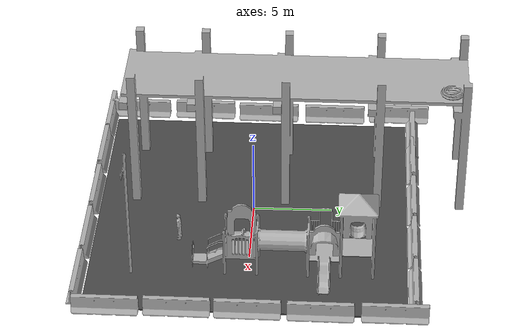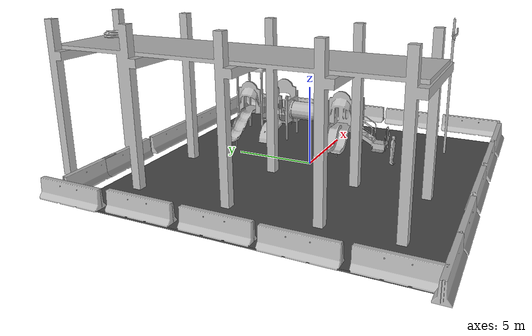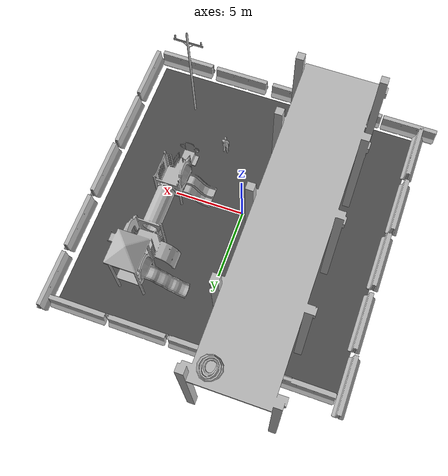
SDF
<sdf version="1.6">
 <world name="default">
  <light name="sun" type="directional">
   <pose>0 0 10 0 -0 0</pose>
   <diffuse>0.8 0.8 0.8 1</diffuse>
   <specular>0.2 0.2 0.2 1</specular>
   <attenuation>
    <range>1000</range>
    <constant>0.9</constant>
    <linear>0.01</linear>
    <quadratic>0.001</quadratic>
   </attenuation>
   <direction>-0.5 0.1 -0.9</direction>
  </light>
  <gravity>0 0 -9.8</gravity>
  <magnetic_field>6e-06 2.3e-05 -4.2e-05</magnetic_field>
  <atmosphere type="adiabatic"/>
  <physics name="default_physics" default="0" type="ode">
   <max_step_size>0.001</max_step_size>
   <real_time_factor>1</real_time_factor>
   <real_time_update_rate>1000</real_time_update_rate>
  </physics>
  <scene><ambient>0.4 0.4 0.4 1</ambient><background>0.7 0.7 0.7 1</background><shadows>1</shadows></scene>
  <audio><device>default</device></audio>
  <spherical_coordinates>
   <surface_model>EARTH_WGS84</surface_model>
   <latitude_deg>0</latitude_deg>
   <longitude_deg>0</longitude_deg>
   <elevation>0</elevation>
   <heading_deg>0</heading_deg>
  </spherical_coordinates>
  <model name="asphalt_plane">
   <static>1</static>
   <link name="link">
    <collision name="collision"><geometry><box><size>20 20 0.1</size></box></geometry></collision>
    <visual name="visual">
     <cast_shadows>0</cast_shadows>
     <geometry><box><size>20 20 0.1</size></box></geometry>
     <material>
      <script>
       <uri>model://asphalt_plane/materials/scripts</uri>
       <uri>model://asphalt_plane/materials/textures</uri>
       <name>vrc/asphalt</name>
      </script>
     </material>
    </visual>
   </link>
   <pose>-0.122487 -0.052165 -0.404777 0 -0 0</pose>
  </model>
  <model name="jersey_barrier">
   <static>1</static>
   <link name="link">
    <visual name="visual">
     <geometry><mesh><uri>model://jersey_barrier/meshes/jersey_barrier.dae</uri></mesh></geometry>
    </visual>
    <collision name="upright">
     <pose>0 0 0.5715 0 -0 0</pose>
     <geometry><box><size>4.06542 0.3063 1.143</size></box></geometry>
    </collision>
    <collision name="base">
     <pose>0 0 0.032258 0 -0 0</pose>
     <geometry><box><size>4.06542 0.8107 0.064516</size></box></geometry>
    </collision>
    <collision name="base2">
     <pose>0 0 0.1 0 -0 0</pose>
     <geometry><box><size>4.06542 0.65 0.1</size></box></geometry>
    </collision>
    <collision name="base3">
     <pose>0 0 0.2 0 -0 0</pose>
     <geometry><box><size>4.06542 0.5 0.1</size></box></geometry>
    </collision>
    <collision name="left-angle">
     <pose>0 -0.224 0.2401 0.9 -0 0</pose>
     <geometry><box><size>4.06542 0.5 0.064516</size></box></geometry>
    </collision>
    <collision name="right-angle">
     <pose>0 0.224 0.2401 -0.9 0 0</pose>
     <geometry><box><size>4.06542 0.5 0.064516</size></box></geometry>
    </collision>
   </link>
   <pose>8.00558 10.3853 0 0 -0 0</pose>
  </model>
  <model name="jersey_barrier_clone">
   <static>1</static>
   <link name="link">
    <visual name="visual">
     <geometry><mesh><uri>model://jersey_barrier/meshes/jersey_barrier.dae</uri></mesh></geometry>
    </visual>
    <collision name="upright">
     <pose>0 0 0.5715 0 -0 0</pose>
     <geometry><box><size>4.06542 0.3063 1.143</size></box></geometry>
    </collision>
    <collision name="base">
     <pose>0 0 0.032258 0 -0 0</pose>
     <geometry><box><size>4.06542 0.8107 0.064516</size></box></geometry>
    </collision>
    <collision name="base2">
     <pose>0 0 0.1 0 -0 0</pose>
     <geometry><box><size>4.06542 0.65 0.1</size></box></geometry>
    </collision>
    <collision name="base3">
     <pose>0 0 0.2 0 -0 0</pose>
     <geometry><box><size>4.06542 0.5 0.1</size></box></geometry>
    </collision>
    <collision name="left-angle">
     <pose>0 -0.224 0.2401 0.9 -0 0</pose>
     <geometry><box><size>4.06542 0.5 0.064516</size></box></geometry>
    </collision>
    <collision name="right-angle">
     <pose>0 0.224 0.2401 -0.9 0 0</pose>
     <geometry><box><size>4.06542 0.5 0.064516</size></box></geometry>
    </collision>
   </link>
   <pose>3.7224 10.3599 0 0 -0 0</pose>
  </model>
  <model name="jersey_barrier_clone_0">
   <static>1</static>
   <link name="link">
    <visual name="visual">
     <geometry><mesh><uri>model://jersey_barrier/meshes/jersey_barrier.dae</uri></mesh></geometry>
    </visual>
    <collision name="upright">
     <pose>0 0 0.5715 0 -0 0</pose>
     <geometry><box><size>4.06542 0.3063 1.143</size></box></geometry>
    </collision>
    <collision name="base">
     <pose>0 0 0.032258 0 -0 0</pose>
     <geometry><box><size>4.06542 0.8107 0.064516</size></box></geometry>
    </collision>
    <collision name="base2">
     <pose>0 0 0.1 0 -0 0</pose>
     <geometry><box><size>4.06542 0.65 0.1</size></box></geometry>
    </collision>
    <collision name="base3">
     <pose>0 0 0.2 0 -0 0</pose>
     <geometry><box><size>4.06542 0.5 0.1</size></box></geometry>
    </collision>
    <collision name="left-angle">
     <pose>0 -0.224 0.2401 0.9 -0 0</pose>
     <geometry><box><size>4.06542 0.5 0.064516</size></box></geometry>
    </collision>
    <collision name="right-angle">
     <pose>0 0.224 0.2401 -0.9 0 0</pose>
     <geometry><box><size>4.06542 0.5 0.064516</size></box></geometry>
    </collision>
   </link>
   <pose>-0.574842 10.3549 0 0 -0 0</pose>
  </model>
  <model name="jersey_barrier_clone_1">
   <static>1</static>
   <link name="link">
    <visual name="visual">
     <geometry><mesh><uri>model://jersey_barrier/meshes/jersey_barrier.dae</uri></mesh></geometry>
    </visual>
    <collision name="upright">
     <pose>0 0 0.5715 0 -0 0</pose>
     <geometry><box><size>4.06542 0.3063 1.143</size></box></geometry>
    </collision>
    <collision name="base">
     <pose>0 0 0.032258 0 -0 0</pose>
     <geometry><box><size>4.06542 0.8107 0.064516</size></box></geometry>
    </collision>
    <collision name="base2">
     <pose>0 0 0.1 0 -0 0</pose>
     <geometry><box><size>4.06542 0.65 0.1</size></box></geometry>
    </collision>
    <collision name="base3">
     <pose>0 0 0.2 0 -0 0</pose>
     <geometry><box><size>4.06542 0.5 0.1</size></box></geometry>
    </collision>
    <collision name="left-angle">
     <pose>0 -0.224 0.2401 0.9 -0 0</pose>
     <geometry><box><size>4.06542 0.5 0.064516</size></box></geometry>
    </collision>
    <collision name="right-angle">
     <pose>0 0.224 0.2401 -0.9 0 0</pose>
     <geometry><box><size>4.06542 0.5 0.064516</size></box></geometry>
    </collision>
   </link>
   <pose>-4.95286 10.3497 0 0 -0 0</pose>
  </model>
  <model name="jersey_barrier_clone_2">
   <static>1</static>
   <link name="link">
    <visual name="visual">
     <geometry><mesh><uri>model://jersey_barrier/meshes/jersey_barrier.dae</uri></mesh></geometry>
    </visual>
    <collision name="upright">
     <pose>0 0 0.5715 0 -0 0</pose>
     <geometry><box><size>4.06542 0.3063 1.143</size></box></geometry>
    </collision>
    <collision name="base">
     <pose>0 0 0.032258 0 -0 0</pose>
     <geometry><box><size>4.06542 0.8107 0.064516</size></box></geometry>
    </collision>
    <collision name="base2">
     <pose>0 0 0.1 0 -0 0</pose>
     <geometry><box><size>4.06542 0.65 0.1</size></box></geometry>
    </collision>
    <collision name="base3">
     <pose>0 0 0.2 0 -0 0</pose>
     <geometry><box><size>4.06542 0.5 0.1</size></box></geometry>
    </collision>
    <collision name="left-angle">
     <pose>0 -0.224 0.2401 0.9 -0 0</pose>
     <geometry><box><size>4.06542 0.5 0.064516</size></box></geometry>
    </collision>
    <collision name="right-angle">
     <pose>0 0.224 0.2401 -0.9 0 0</pose>
     <geometry><box><size>4.06542 0.5 0.064516</size></box></geometry>
    </collision>
   </link>
   <pose>-7.9448 10.3733 0 0 -0 0</pose>
  </model>
  <model name="jersey_barrier_clone_3">
   <static>1</static>
   <link name="link">
    <visual name="visual">
     <geometry><mesh><uri>model://jersey_barrier/meshes/jersey_barrier.dae</uri></mesh></geometry>
    </visual>
    <collision name="upright">
     <pose>0 0 0.5715 0 -0 0</pose>
     <geometry><box><size>4.06542 0.3063 1.143</size></box></geometry>
    </collision>
    <collision name="base">
     <pose>0 0 0.032258 0 -0 0</pose>
     <geometry><box><size>4.06542 0.8107 0.064516</size></box></geometry>
    </collision>
    <collision name="base2">
     <pose>0 0 0.1 0 -0 0</pose>
     <geometry><box><size>4.06542 0.65 0.1</size></box></geometry>
    </collision>
    <collision name="base3">
     <pose>0 0 0.2 0 -0 0</pose>
     <geometry><box><size>4.06542 0.5 0.1</size></box></geometry>
    </collision>
    <collision name="left-angle">
     <pose>0 -0.224 0.2401 0.9 -0 0</pose>
     <geometry><box><size>4.06542 0.5 0.064516</size></box></geometry>
    </collision>
    <collision name="right-angle">
     <pose>0 0.224 0.2401 -0.9 0 0</pose>
     <geometry><box><size>4.06542 0.5 0.064516</size></box></geometry>
    </collision>
   </link>
   <pose>8.06881 -10.4596 0 0 -0 0</pose>
  </model>
  <model name="jersey_barrier_clone_4">
   <static>1</static>
   <link name="link">
    <visual name="visual">
     <geometry><mesh><uri>model://jersey_barrier/meshes/jersey_barrier.dae</uri></mesh></geometry>
    </visual>
    <collision name="upright">
     <pose>0 0 0.5715 0 -0 0</pose>
     <geometry><box><size>4.06542 0.3063 1.143</size></box></geometry>
    </collision>
    <collision name="base">
     <pose>0 0 0.032258 0 -0 0</pose>
     <geometry><box><size>4.06542 0.8107 0.064516</size></box></geometry>
    </collision>
    <collision name="base2">
     <pose>0 0 0.1 0 -0 0</pose>
     <geometry><box><size>4.06542 0.65 0.1</size></box></geometry>
    </collision>
    <collision name="base3">
     <pose>0 0 0.2 0 -0 0</pose>
     <geometry><box><size>4.06542 0.5 0.1</size></box></geometry>
    </collision>
    <collision name="left-angle">
     <pose>0 -0.224 0.2401 0.9 -0 0</pose>
     <geometry><box><size>4.06542 0.5 0.064516</size></box></geometry>
    </collision>
    <collision name="right-angle">
     <pose>0 0.224 0.2401 -0.9 0 0</pose>
     <geometry><box><size>4.06542 0.5 0.064516</size></box></geometry>
    </collision>
   </link>
   <pose>3.6956 -10.4193 0 0 -0 0</pose>
  </model>
  <model name="jersey_barrier_clone_5">
   <static>1</static>
   <link name="link">
    <visual name="visual">
     <geometry><mesh><uri>model://jersey_barrier/meshes/jersey_barrier.dae</uri></mesh></geometry>
    </visual>
    <collision name="upright">
     <pose>0 0 0.5715 0 -0 0</pose>
     <geometry><box><size>4.06542 0.3063 1.143</size></box></geometry>
    </collision>
    <collision name="base">
     <pose>0 0 0.032258 0 -0 0</pose>
     <geometry><box><size>4.06542 0.8107 0.064516</size></box></geometry>
    </collision>
    <collision name="base2">
     <pose>0 0 0.1 0 -0 0</pose>
     <geometry><box><size>4.06542 0.65 0.1</size></box></geometry>
    </collision>
    <collision name="base3">
     <pose>0 0 0.2 0 -0 0</pose>
     <geometry><box><size>4.06542 0.5 0.1</size></box></geometry>
    </collision>
    <collision name="left-angle">
     <pose>0 -0.224 0.2401 0.9 -0 0</pose>
     <geometry><box><size>4.06542 0.5 0.064516</size></box></geometry>
    </collision>
    <collision name="right-angle">
     <pose>0 0.224 0.2401 -0.9 0 0</pose>
     <geometry><box><size>4.06542 0.5 0.064516</size></box></geometry>
    </collision>
   </link>
   <pose>-0.820207 -10.41 0 0 -0 0</pose>
  </model>
  <model name="jersey_barrier_clone_6">
   <static>1</static>
   <link name="link">
    <visual name="visual">
     <geometry><mesh><uri>model://jersey_barrier/meshes/jersey_barrier.dae</uri></mesh></geometry>
    </visual>
    <collision name="upright">
     <pose>0 0 0.5715 0 -0 0</pose>
     <geometry><box><size>4.06542 0.3063 1.143</size></box></geometry>
    </collision>
    <collision name="base">
     <pose>0 0 0.032258 0 -0 0</pose>
     <geometry><box><size>4.06542 0.8107 0.064516</size></box></geometry>
    </collision>
    <collision name="base2">
     <pose>0 0 0.1 0 -0 0</pose>
     <geometry><box><size>4.06542 0.65 0.1</size></box></geometry>
    </collision>
    <collision name="base3">
     <pose>0 0 0.2 0 -0 0</pose>
     <geometry><box><size>4.06542 0.5 0.1</size></box></geometry>
    </collision>
    <collision name="left-angle">
     <pose>0 -0.224 0.2401 0.9 -0 0</pose>
     <geometry><box><size>4.06542 0.5 0.064516</size></box></geometry>
    </collision>
    <collision name="right-angle">
     <pose>0 0.224 0.2401 -0.9 0 0</pose>
     <geometry><box><size>4.06542 0.5 0.064516</size></box></geometry>
    </collision>
   </link>
   <pose>-5.29473 -10.4432 0 0 -0 0</pose>
  </model>
  <model name="jersey_barrier_clone_7">
   <static>1</static>
   <link name="link">
    <visual name="visual">
     <geometry><mesh><uri>model://jersey_barrier/meshes/jersey_barrier.dae</uri></mesh></geometry>
    </visual>
    <collision name="upright">
     <pose>0 0 0.5715 0 -0 0</pose>
     <geometry><box><size>4.06542 0.3063 1.143</size></box></geometry>
    </collision>
    <collision name="base">
     <pose>0 0 0.032258 0 -0 0</pose>
     <geometry><box><size>4.06542 0.8107 0.064516</size></box></geometry>
    </collision>
    <collision name="base2">
     <pose>0 0 0.1 0 -0 0</pose>
     <geometry><box><size>4.06542 0.65 0.1</size></box></geometry>
    </collision>
    <collision name="base3">
     <pose>0 0 0.2 0 -0 0</pose>
     <geometry><box><size>4.06542 0.5 0.1</size></box></geometry>
    </collision>
    <collision name="left-angle">
     <pose>0 -0.224 0.2401 0.9 -0 0</pose>
     <geometry><box><size>4.06542 0.5 0.064516</size></box></geometry>
    </collision>
    <collision name="right-angle">
     <pose>0 0.224 0.2401 -0.9 0 0</pose>
     <geometry><box><size>4.06542 0.5 0.064516</size></box></geometry>
    </collision>
   </link>
   <pose>-9.46267 -10.4292 0 0 -0 0</pose>
  </model>
  <model name="jersey_barrier_clone_8">
   <static>1</static>
   <link name="link">
    <visual name="visual">
     <geometry><mesh><uri>model://jersey_barrier/meshes/jersey_barrier.dae</uri></mesh></geometry>
    </visual>
    <collision name="upright">
     <pose>0 0 0.5715 0 -0 0</pose>
     <geometry><box><size>4.06542 0.3063 1.143</size></box></geometry>
    </collision>
    <collision name="base">
     <pose>0 0 0.032258 0 -0 0</pose>
     <geometry><box><size>4.06542 0.8107 0.064516</size></box></geometry>
    </collision>
    <collision name="base2">
     <pose>0 0 0.1 0 -0 0</pose>
     <geometry><box><size>4.06542 0.65 0.1</size></box></geometry>
    </collision>
    <collision name="base3">
     <pose>0 0 0.2 0 -0 0</pose>
     <geometry><box><size>4.06542 0.5 0.1</size></box></geometry>
    </collision>
    <collision name="left-angle">
     <pose>0 -0.224 0.2401 0.9 -0 0</pose>
     <geometry><box><size>4.06542 0.5 0.064516</size></box></geometry>
    </collision>
    <collision name="right-angle">
     <pose>0 0.224 0.2401 -0.9 0 0</pose>
     <geometry><box><size>4.06542 0.5 0.064516</size></box></geometry>
    </collision>
   </link>
   <pose>-10.3497 -8.43803 0 0 0 -1.57337</pose>
  </model>
  <model name="jersey_barrier_clone_8_clone">
   <static>1</static>
   <link name="link">
    <visual name="visual">
     <geometry><mesh><uri>model://jersey_barrier/meshes/jersey_barrier.dae</uri></mesh></geometry>
    </visual>
    <collision name="upright">
     <pose>0 0 0.5715 0 -0 0</pose>
     <geometry><box><size>4.06542 0.3063 1.143</size></box></geometry>
    </collision>
    <collision name="base">
     <pose>0 0 0.032258 0 -0 0</pose>
     <geometry><box><size>4.06542 0.8107 0.064516</size></box></geometry>
    </collision>
    <collision name="base2">
     <pose>0 0 0.1 0 -0 0</pose>
     <geometry><box><size>4.06542 0.65 0.1</size></box></geometry>
    </collision>
    <collision name="base3">
     <pose>0 0 0.2 0 -0 0</pose>
     <geometry><box><size>4.06542 0.5 0.1</size></box></geometry>
    </collision>
    <collision name="left-angle">
     <pose>0 -0.224 0.2401 0.9 -0 0</pose>
     <geometry><box><size>4.06542 0.5 0.064516</size></box></geometry>
    </collision>
    <collision name="right-angle">
     <pose>0 0.224 0.2401 -0.9 0 0</pose>
     <geometry><box><size>4.06542 0.5 0.064516</size></box></geometry>
    </collision>
   </link>
   <pose>-10.4085 -3.94138 0 0 0 -1.57337</pose>
  </model>
  <model name="jersey_barrier_clone_8_clone_0">
   <static>1</static>
   <link name="link">
    <visual name="visual">
     <geometry><mesh><uri>model://jersey_barrier/meshes/jersey_barrier.dae</uri></mesh></geometry>
    </visual>
    <collision name="upright">
     <pose>0 0 0.5715 0 -0 0</pose>
     <geometry><box><size>4.06542 0.3063 1.143</size></box></geometry>
    </collision>
    <collision name="base">
     <pose>0 0 0.032258 0 -0 0</pose>
     <geometry><box><size>4.06542 0.8107 0.064516</size></box></geometry>
    </collision>
    <collision name="base2">
     <pose>0 0 0.1 0 -0 0</pose>
     <geometry><box><size>4.06542 0.65 0.1</size></box></geometry>
    </collision>
    <collision name="base3">
     <pose>0 0 0.2 0 -0 0</pose>
     <geometry><box><size>4.06542 0.5 0.1</size></box></geometry>
    </collision>
    <collision name="left-angle">
     <pose>0 -0.224 0.2401 0.9 -0 0</pose>
     <geometry><box><size>4.06542 0.5 0.064516</size></box></geometry>
    </collision>
    <collision name="right-angle">
     <pose>0 0.224 0.2401 -0.9 0 0</pose>
     <geometry><box><size>4.06542 0.5 0.064516</size></box></geometry>
    </collision>
   </link>
   <pose>-10.2793 0.469883 0 0 0 -1.57337</pose>
  </model>
  <model name="jersey_barrier_clone_8_clone_1">
   <static>1</static>
   <link name="link">
    <visual name="visual">
     <geometry><mesh><uri>model://jersey_barrier/meshes/jersey_barrier.dae</uri></mesh></geometry>
    </visual>
    <collision name="upright">
     <pose>0 0 0.5715 0 -0 0</pose>
     <geometry><box><size>4.06542 0.3063 1.143</size></box></geometry>
    </collision>
    <collision name="base">
     <pose>0 0 0.032258 0 -0 0</pose>
     <geometry><box><size>4.06542 0.8107 0.064516</size></box></geometry>
    </collision>
    <collision name="base2">
     <pose>0 0 0.1 0 -0 0</pose>
     <geometry><box><size>4.06542 0.65 0.1</size></box></geometry>
    </collision>
    <collision name="base3">
     <pose>0 0 0.2 0 -0 0</pose>
     <geometry><box><size>4.06542 0.5 0.1</size></box></geometry>
    </collision>
    <collision name="left-angle">
     <pose>0 -0.224 0.2401 0.9 -0 0</pose>
     <geometry><box><size>4.06542 0.5 0.064516</size></box></geometry>
    </collision>
    <collision name="right-angle">
     <pose>0 0.224 0.2401 -0.9 0 0</pose>
     <geometry><box><size>4.06542 0.5 0.064516</size></box></geometry>
    </collision>
   </link>
   <pose>-10.2578 5.03813 0 0 0 -1.57337</pose>
  </model>
  <model name="jersey_barrier_clone_8_clone_2">
   <static>1</static>
   <link name="link">
    <visual name="visual">
     <geometry><mesh><uri>model://jersey_barrier/meshes/jersey_barrier.dae</uri></mesh></geometry>
    </visual>
    <collision name="upright">
     <pose>0 0 0.5715 0 -0 0</pose>
     <geometry><box><size>4.06542 0.3063 1.143</size></box></geometry>
    </collision>
    <collision name="base">
     <pose>0 0 0.032258 0 -0 0</pose>
     <geometry><box><size>4.06542 0.8107 0.064516</size></box></geometry>
    </collision>
    <collision name="base2">
     <pose>0 0 0.1 0 -0 0</pose>
     <geometry><box><size>4.06542 0.65 0.1</size></box></geometry>
    </collision>
    <collision name="base3">
     <pose>0 0 0.2 0 -0 0</pose>
     <geometry><box><size>4.06542 0.5 0.1</size></box></geometry>
    </collision>
    <collision name="left-angle">
     <pose>0 -0.224 0.2401 0.9 -0 0</pose>
     <geometry><box><size>4.06542 0.5 0.064516</size></box></geometry>
    </collision>
    <collision name="right-angle">
     <pose>0 0.224 0.2401 -0.9 0 0</pose>
     <geometry><box><size>4.06542 0.5 0.064516</size></box></geometry>
    </collision>
   </link>
   <pose>-10.4526 9.45713 0 0 0 -1.57337</pose>
  </model>
  <model name="jersey_barrier_clone_8_clone_3">
   <static>1</static>
   <link name="link">
    <visual name="visual">
     <geometry><mesh><uri>model://jersey_barrier/meshes/jersey_barrier.dae</uri></mesh></geometry>
    </visual>
    <collision name="upright">
     <pose>0 0 0.5715 0 -0 0</pose>
     <geometry><box><size>4.06542 0.3063 1.143</size></box></geometry>
    </collision>
    <collision name="base">
     <pose>0 0 0.032258 0 -0 0</pose>
     <geometry><box><size>4.06542 0.8107 0.064516</size></box></geometry>
    </collision>
    <collision name="base2">
     <pose>0 0 0.1 0 -0 0</pose>
     <geometry><box><size>4.06542 0.65 0.1</size></box></geometry>
    </collision>
    <collision name="base3">
     <pose>0 0 0.2 0 -0 0</pose>
     <geometry><box><size>4.06542 0.5 0.1</size></box></geometry>
    </collision>
    <collision name="left-angle">
     <pose>0 -0.224 0.2401 0.9 -0 0</pose>
     <geometry><box><size>4.06542 0.5 0.064516</size></box></geometry>
    </collision>
    <collision name="right-angle">
     <pose>0 0.224 0.2401 -0.9 0 0</pose>
     <geometry><box><size>4.06542 0.5 0.064516</size></box></geometry>
    </collision>
   </link>
   <pose>10.4652 9.12731 0 0 0 -1.57337</pose>
  </model>
  <model name="jersey_barrier_clone_8_clone_4">
   <static>1</static>
   <link name="link">
    <visual name="visual">
     <geometry><mesh><uri>model://jersey_barrier/meshes/jersey_barrier.dae</uri></mesh></geometry>
    </visual>
    <collision name="upright">
     <pose>0 0 0.5715 0 -0 0</pose>
     <geometry><box><size>4.06542 0.3063 1.143</size></box></geometry>
    </collision>
    <collision name="base">
     <pose>0 0 0.032258 0 -0 0</pose>
     <geometry><box><size>4.06542 0.8107 0.064516</size></box></geometry>
    </collision>
    <collision name="base2">
     <pose>0 0 0.1 0 -0 0</pose>
     <geometry><box><size>4.06542 0.65 0.1</size></box></geometry>
    </collision>
    <collision name="base3">
     <pose>0 0 0.2 0 -0 0</pose>
     <geometry><box><size>4.06542 0.5 0.1</size></box></geometry>
    </collision>
    <collision name="left-angle">
     <pose>0 -0.224 0.2401 0.9 -0 0</pose>
     <geometry><box><size>4.06542 0.5 0.064516</size></box></geometry>
    </collision>
    <collision name="right-angle">
     <pose>0 0.224 0.2401 -0.9 0 0</pose>
     <geometry><box><size>4.06542 0.5 0.064516</size></box></geometry>
    </collision>
   </link>
   <pose>10.5235 4.64483 0 0 0 -1.57337</pose>
  </model>
  <model name="jersey_barrier_clone_8_clone_5">
   <static>1</static>
   <link name="link">
    <visual name="visual">
     <geometry><mesh><uri>model://jersey_barrier/meshes/jersey_barrier.dae</uri></mesh></geometry>
    </visual>
    <collision name="upright">
     <pose>0 0 0.5715 0 -0 0</pose>
     <geometry><box><size>4.06542 0.3063 1.143</size></box></geometry>
    </collision>
    <collision name="base">
     <pose>0 0 0.032258 0 -0 0</pose>
     <geometry><box><size>4.06542 0.8107 0.064516</size></box></geometry>
    </collision>
    <collision name="base2">
     <pose>0 0 0.1 0 -0 0</pose>
     <geometry><box><size>4.06542 0.65 0.1</size></box></geometry>
    </collision>
    <collision name="base3">
     <pose>0 0 0.2 0 -0 0</pose>
     <geometry><box><size>4.06542 0.5 0.1</size></box></geometry>
    </collision>
    <collision name="left-angle">
     <pose>0 -0.224 0.2401 0.9 -0 0</pose>
     <geometry><box><size>4.06542 0.5 0.064516</size></box></geometry>
    </collision>
    <collision name="right-angle">
     <pose>0 0.224 0.2401 -0.9 0 0</pose>
     <geometry><box><size>4.06542 0.5 0.064516</size></box></geometry>
    </collision>
   </link>
   <pose>10.508 0.214799 0.015473 0 0 -1.57337</pose>
  </model>
  <model name="jersey_barrier_clone_8_clone_6">
   <static>1</static>
   <link name="link">
    <visual name="visual">
     <geometry><mesh><uri>model://jersey_barrier/meshes/jersey_barrier.dae</uri></mesh></geometry>
    </visual>
    <collision name="upright">
     <pose>0 0 0.5715 0 -0 0</pose>
     <geometry><box><size>4.06542 0.3063 1.143</size></box></geometry>
    </collision>
    <collision name="base">
     <pose>0 0 0.032258 0 -0 0</pose>
     <geometry><box><size>4.06542 0.8107 0.064516</size></box></geometry>
    </collision>
    <collision name="base2">
     <pose>0 0 0.1 0 -0 0</pose>
     <geometry><box><size>4.06542 0.65 0.1</size></box></geometry>
    </collision>
    <collision name="base3">
     <pose>0 0 0.2 0 -0 0</pose>
     <geometry><box><size>4.06542 0.5 0.1</size></box></geometry>
    </collision>
    <collision name="left-angle">
     <pose>0 -0.224 0.2401 0.9 -0 0</pose>
     <geometry><box><size>4.06542 0.5 0.064516</size></box></geometry>
    </collision>
    <collision name="right-angle">
     <pose>0 0.224 0.2401 -0.9 0 0</pose>
     <geometry><box><size>4.06542 0.5 0.064516</size></box></geometry>
    </collision>
   </link>
   <pose>10.462 -4.06846 0 0 0 -1.57337</pose>
  </model>
  <model name="jersey_barrier_clone_8_clone_7">
   <static>1</static>
   <link name="link">
    <visual name="visual">
     <geometry><mesh><uri>model://jersey_barrier/meshes/jersey_barrier.dae</uri></mesh></geometry>
    </visual>
    <collision name="upright">
     <pose>0 0 0.5715 0 -0 0</pose>
     <geometry><box><size>4.06542 0.3063 1.143</size></box></geometry>
    </collision>
    <collision name="base">
     <pose>0 0 0.032258 0 -0 0</pose>
     <geometry><box><size>4.06542 0.8107 0.064516</size></box></geometry>
    </collision>
    <collision name="base2">
     <pose>0 0 0.1 0 -0 0</pose>
     <geometry><box><size>4.06542 0.65 0.1</size></box></geometry>
    </collision>
    <collision name="base3">
     <pose>0 0 0.2 0 -0 0</pose>
     <geometry><box><size>4.06542 0.5 0.1</size></box></geometry>
    </collision>
    <collision name="left-angle">
     <pose>0 -0.224 0.2401 0.9 -0 0</pose>
     <geometry><box><size>4.06542 0.5 0.064516</size></box></geometry>
    </collision>
    <collision name="right-angle">
     <pose>0 0.224 0.2401 -0.9 0 0</pose>
     <geometry><box><size>4.06542 0.5 0.064516</size></box></geometry>
    </collision>
   </link>
   <pose>10.5124 -8.41466 0 0 0 -1.57337</pose>
  </model>
  <model name="pier">
   <static>1</static>
   <link name="link">
    <pose>0 0 7.45747 0 -0 0</pose>
    <collision name="collision_platform">
     <pose>0 11.1915 0.479154 0 -0 0</pose>
     <geometry><box><size>4.99841 22.1059 0.223137</size></box></geometry>
    </collision>
    <collision name="collision_pillar1">
     <pose>2.7658 0.839949 -2.6492 0 -0 0</pose>
     <geometry><box><size>0.526207 0.526207 9.61655</size></box></geometry>
    </collision>
    <collision name="collision_pillar2">
     <pose>2.7658 5.1533 -2.6492 0 -0 0</pose>
     <geometry><box><size>0.526207 0.526207 9.61655</size></box></geometry>
    </collision>
    <collision name="collision_pillar3">
     <pose>2.7658 10.6027 -2.6492 0 -0 0</pose>
     <geometry><box><size>0.526207 0.526207 9.61655</size></box></geometry>
    </collision>
    <collision name="collision_pillar4">
     <pose>2.7658 16.5973 -2.6492 0 -0 0</pose>
     <geometry><box><size>0.526207 0.526207 9.61655</size></box></geometry>
    </collision>
    <collision name="collision_pillar5">
     <pose>2.7658 21.9768 -2.6492 0 -0 0</pose>
     <geometry><box><size>0.526207 0.526207 9.61655</size></box></geometry>
    </collision>
    <collision name="collision_pillar6">
     <pose>-2.7658 0.839949 -2.6492 0 -0 0</pose>
     <geometry><box><size>0.526207 0.526207 9.61655</size></box></geometry>
    </collision>
    <collision name="collision_pillar7">
     <pose>-2.7658 5.1533 -2.6492 0 -0 0</pose>
     <geometry><box><size>0.526207 0.526207 9.61655</size></box></geometry>
    </collision>
    <collision name="collision_pillar8">
     <pose>-2.7658 10.6027 -2.6492 0 -0 0</pose>
     <geometry><box><size>0.526207 0.526207 9.61655</size></box></geometry>
    </collision>
    <collision name="collision_pillar9">
     <pose>-2.7658 16.5973 -2.6492 0 -0 0</pose>
     <geometry><box><size>0.526207 0.526207 9.61655</size></box></geometry>
    </collision>
    <collision name="collision_pillar10">
     <pose>-2.7658 21.9768 -2.6492 0 -0 0</pose>
     <geometry><box><size>0.526207 0.526207 9.61655</size></box></geometry>
    </collision>
    <collision name="collision_beam1">
     <pose>0 0.303862 0.079695 0 -0 0</pose>
     <geometry><box><size>6.28904 0.526207 0.526207</size></box></geometry>
    </collision>
    <collision name="collision_beam2">
     <pose>0 4.61721 0.079695 0 -0 0</pose>
     <geometry><box><size>6.28904 0.526207 0.526207</size></box></geometry>
    </collision>
    <collision name="collision_beam3">
     <pose>0 10.0666 0.079695 0 -0 0</pose>
     <geometry><box><size>6.28904 0.526207 0.526207</size></box></geometry>
    </collision>
    <collision name="collision_beam4">
     <pose>0 16.0612 0.079695 0 -0 0</pose>
     <geometry><box><size>6.28904 0.526207 0.526207</size></box></geometry>
    </collision>
    <collision name="collision_beam5">
     <pose>0 21.4407 0.079695 0 -0 0</pose>
     <geometry><box><size>6.28904 0.526207 0.526207</size></box></geometry>
    </collision>
    <visual name="visual"><geometry><mesh><uri>model://pier/meshes/pier.dae</uri></mesh></geometry></visual>
   </link>
   <pose>-4.01755 -8.60899 -0.370169 0 -0 0</pose>
  </model>
  <model name="playground">
   <static>1</static>
   <link name="link">
    <collision name="collision">
     <geometry><mesh><uri>model://playground/meshes/playground.dae</uri></mesh></geometry>
    </collision>
    <visual name="visual">
     <geometry><mesh><uri>model://playground/meshes/playground.dae</uri></mesh></geometry>
    </visual>
   </link>
   <pose>4.93369 2.21303 -0.485454 0 0 -1.57185</pose>
  </model>
  <model name="telephone_pole">
   <static>1</static>
   <link name="link">
    <collision name="collision_pole">
     <pose>0 0 4.572 0 -0 0</pose>
     <geometry><cylinder><radius>0.0779475</radius><length>9.144</length></cylinder></geometry>
    </collision>
    <collision name="collision_cross">
     <pose>0 -0.098806 8.04836 0 -0 0</pose>
     <geometry><box><size>2.11606 0.041763 0.177806</size></box></geometry>
    </collision>
    <visual name="visual">
     <geometry><mesh><uri>model://telephone_pole/meshes/telephone_pole.dae</uri></mesh></geometry>
    </visual>
   </link>
   <pose>6.40732 -7.31688 -0.361201 0 -0 0</pose>
  </model>
  <model name="person_standing">
   <link name="link">
    <inertial>
     <pose>0 -0.1 0.95 0 -0 0</pose>
     <mass>80</mass>
     <inertia><ixx>24.88</ixx><ixy>0</ixy><ixz>0</ixz><iyy>25.73</iyy><iyz>0</iyz><izz>2.48</izz></inertia>
    </inertial>
    <collision name="bottom">
     <pose>0 -0.1 0.01 0 -0 0</pose>
     <geometry><box><size>0.5 0.35 0.02</size></box></geometry>
    </collision>
    <collision name="person">
     <pose>0 0 0.02 0.04 -0 0</pose>
     <geometry><mesh><uri>model://person_standing/meshes/standing.dae</uri></mesh></geometry>
    </collision>
    <visual name="visual">
     <pose>0 0 0.02 0.04 -0 0</pose>
     <geometry><mesh><uri>model://person_standing/meshes/standing.dae</uri></mesh></geometry>
    </visual>
   </link>
   <pose>2.92096 -4.51204 -0.354777 -0 1e-06 -0.05363</pose>
  </model>
 </world>
</sdf>
